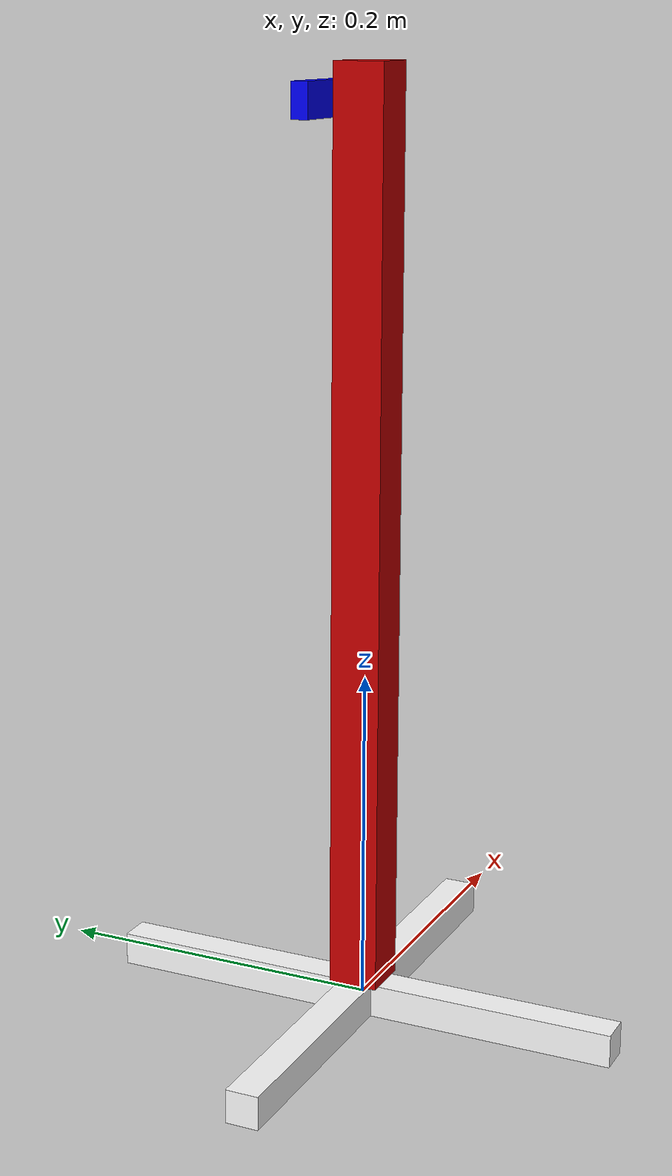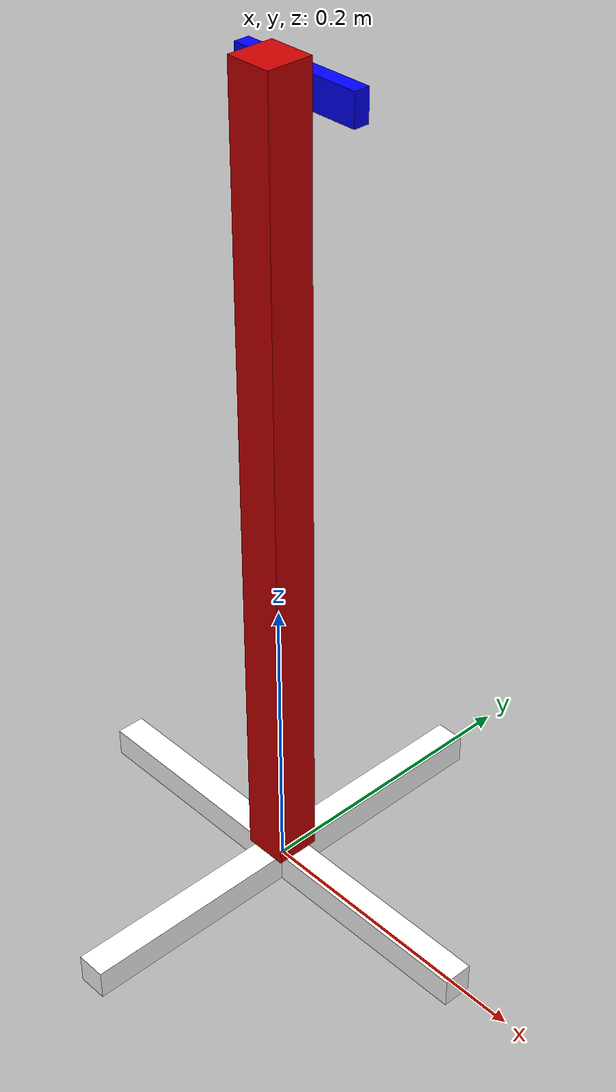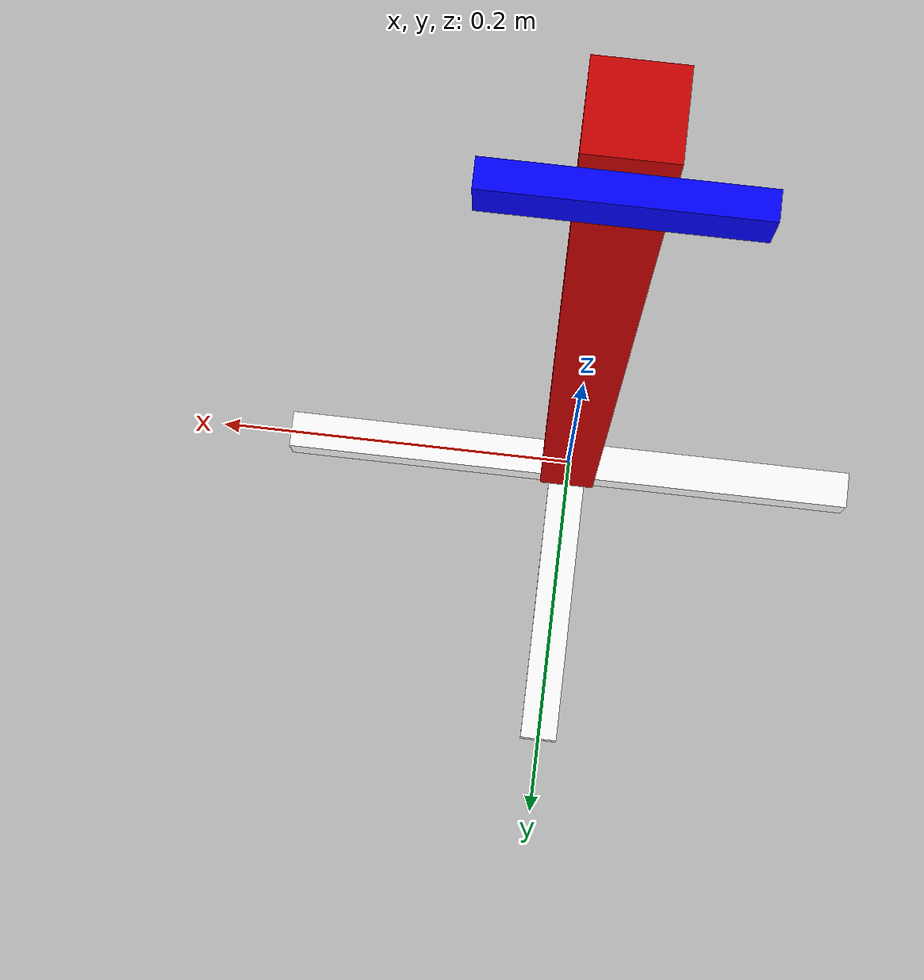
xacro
<?xml version="1.0"?>
<!--
  The complete coldeyes library of xacros for easy reference
 -->
<robot xmlns:xacro="http://ros.org/wiki/xacro">
  <!-- Common Properties -->
  <xacro:include filename="$(find coldeyes_description)/urdf/common_properties.urdf.xacro"/>
  <!-- Frame -->
  <xacro:include filename="$(find coldeyes_description)/urdf/frame/coldeyes_frame.urdf.xacro"/>
  <!-- Bundle Markers -->
  <xacro:include filename="$(find coldeyes_description)/urdf/marker_bundle/marker_bundle.urdf.xacro"/>

</robot>

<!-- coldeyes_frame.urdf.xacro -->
<robot name="coldeyes_frame" xmlns:xacro="http://ros.org/wiki/xacro">
  <xacro:include filename="$(find coldeyes_description)/urdf/common_properties.urdf.xacro"/>
  <link name="base_link">
    <visual>
      <geometry>
        <box size=".03 .03 .54"/>
      </geometry>
      <origin rpy="0 0 0" xyz="0 0 .280"/>
      <material name="red">
        <color rgba=".8 0 0 1"/>
      </material>
    </visual>
  </link>

  <link name="camera_front">
    <visual>
      <geometry>
        <box size=".09 .01 .02"/>
      </geometry>
      <origin rpy="1.57075 0 0" xyz="0 0 0"/>
      <material name="blue">
        <color rgba="0 0 1 1"/>
      </material>
    </visual>
  </link>

  <joint name="base_to_camera_front" type="fixed">
    <parent link="base_link"/>
    <child link="camera_front"/>
    <origin rpy="-1.57075 0 0" xyz="0 .0205 0.53"/>
  </joint>

  <link name="x_leg">
    <visual>
      <geometry>
        <box size=".02 .02 .32"/>
      </geometry>
      <origin rpy="0 1.57075 1.57075" xyz="0 0 0"/>
      <material name="white">
        <color rgba="1 1 1 1"/>
      </material>
    </visual>
  </link>

  <joint name="base_to_right_leg" type="fixed">
    <parent link="base_link"/>
    <child link="x_leg"/>
    <origin xyz="0 0 0"/>
  </joint>

  <link name="y_leg">
    <visual>
      <geometry>
        <box size=".02 .02 .32"/>
      </geometry>
      <origin rpy="1.57075 1.57075 1.57075" xyz="0 0 0"/>
      <material name="white"/>
    </visual>
  </link>

  <joint name="base_to_left_leg" type="fixed">
    <parent link="base_link"/>
    <child link="y_leg"/>
    <origin xyz="0 0 0"/>
  </joint>
</robot>
